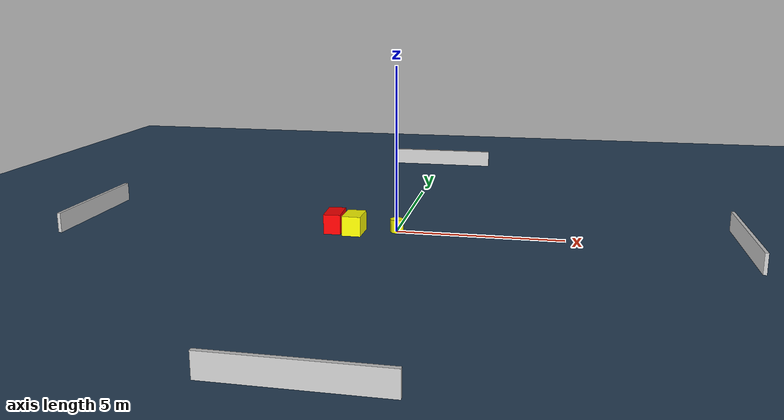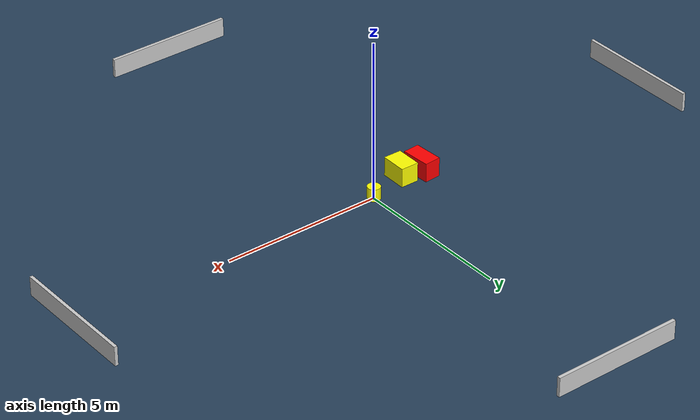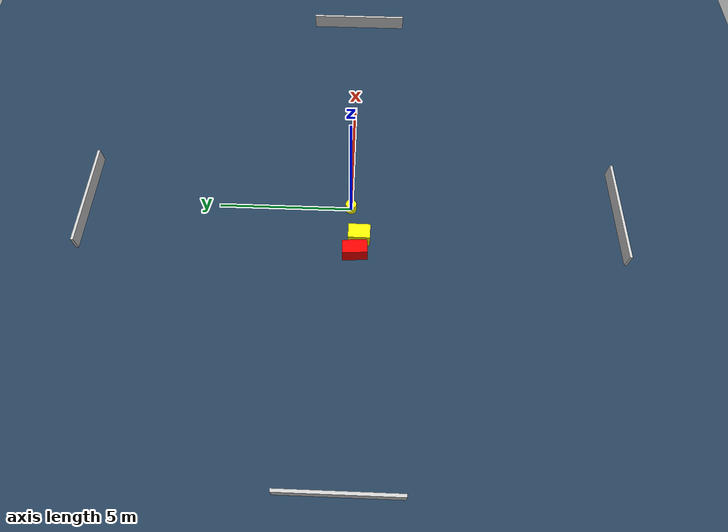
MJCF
<?xml version="1.0" ?>
<mujoco model="generated_environment">
  <option timestep="0.01" integrator="RK4" cone="elliptic"/>
  <default>
    <geom density="1"/>
  </default>
  <asset>
    <texture builtin="gradient" height="3072" name="skybox" rgb1="0.3 0.5 0.7" rgb2="0 0 0" type="skybox" width="512"/>
    <texture builtin="checker" height="300" name="groundplane" rgb1="0.2 0.3 0.4" rgb2="0.1 0.2 0.3" type="2d" width="300"/>
    <material name="groundplane" reflectance="0.2" texrepeat="5 5" texture="groundplane"/>
  </asset>
  <worldbody>
    <light dir="0 0 -1" directional="true" pos="0 0 1.5"/>
    <geom condim="3" friction="0.5 0.005 0.001" material="groundplane" name="floor" pos="0 0 0" size="0 0 0.05" type="plane"/>
    <body name="walls">
      <geom name="wall_1" condim="4" pos="-10.0 0.0 0.3" rgba="0.800000011920929 0.800000011920929 0.800000011920929 1.0" size="0.05 2.0 0.3" type="box"/>
      <geom name="wall_2" condim="4" pos="10.0 0.0 0.3" rgba="0.800000011920929 0.800000011920929 0.800000011920929 1.0" size="0.05 2.0 0.3" type="box"/>
      <geom name="wall_3" condim="4" pos="0.0 -10.0 0.3" rgba="0.800000011920929 0.800000011920929 0.800000011920929 1.0" size="2.0 0.05 0.3" type="box"/>
      <geom name="wall_4" condim="4" pos="0.0 10.0 0.3" rgba="0.800000011920929 0.800000011920929 0.800000011920929 1.0" size="2.0 0.05 0.3" type="box"/>
    </body>
    <body name="robot">
      <joint name="joint_x" type="slide" pos="0 0 0" axis="1 0 0"/>
      <joint name="joint_y" type="slide" pos="0 0 0" axis="0 1 0"/>
      <geom name="robot" type="cylinder" pos="0.0 0.0 0.2" size="0.2 0.2 0.0" mass="5.0" friction="1.0 0.005 0.0001" condim="4" rgba="1.0 1.0 0.0 1.0"/>
    </body>
    <body name="obstacle_1_movable">
      <geom name="obstacle_1_movable" condim="4" pos="-1.2474044975157073 -0.340957459911608 0.3" euler="0 0 179.3203683311704" friction="0.0 0.005 0.001" rgba="1.0 1.0 0.0 1.0" size="0.2837097990137201 0.40237705684406644 0.3" type="box" mass="0.1"/>
      <joint type="free"/>
    </body>
    <body name="obstacle_2_static">
      <geom name="obstacle_2_static" condim="4" pos="-1.8867121430346951 -0.19928232655155484 0.3" euler="0 0 3.401883974467923" friction="0.0 0.005 0.001" rgba="1.0 0.0 0.0 1.0" size="0.2565143795772896 0.4539657109864299 0.3" type="box"/>
    </body>
  </worldbody>
  <actuator>
    <motor name="actuator_x" joint="joint_x" gear="1" ctrlrange="-1 1"/>
    <motor name="actuator_y" joint="joint_y" gear="1" ctrlrange="-1 1"/>
  </actuator>
</mujoco>
